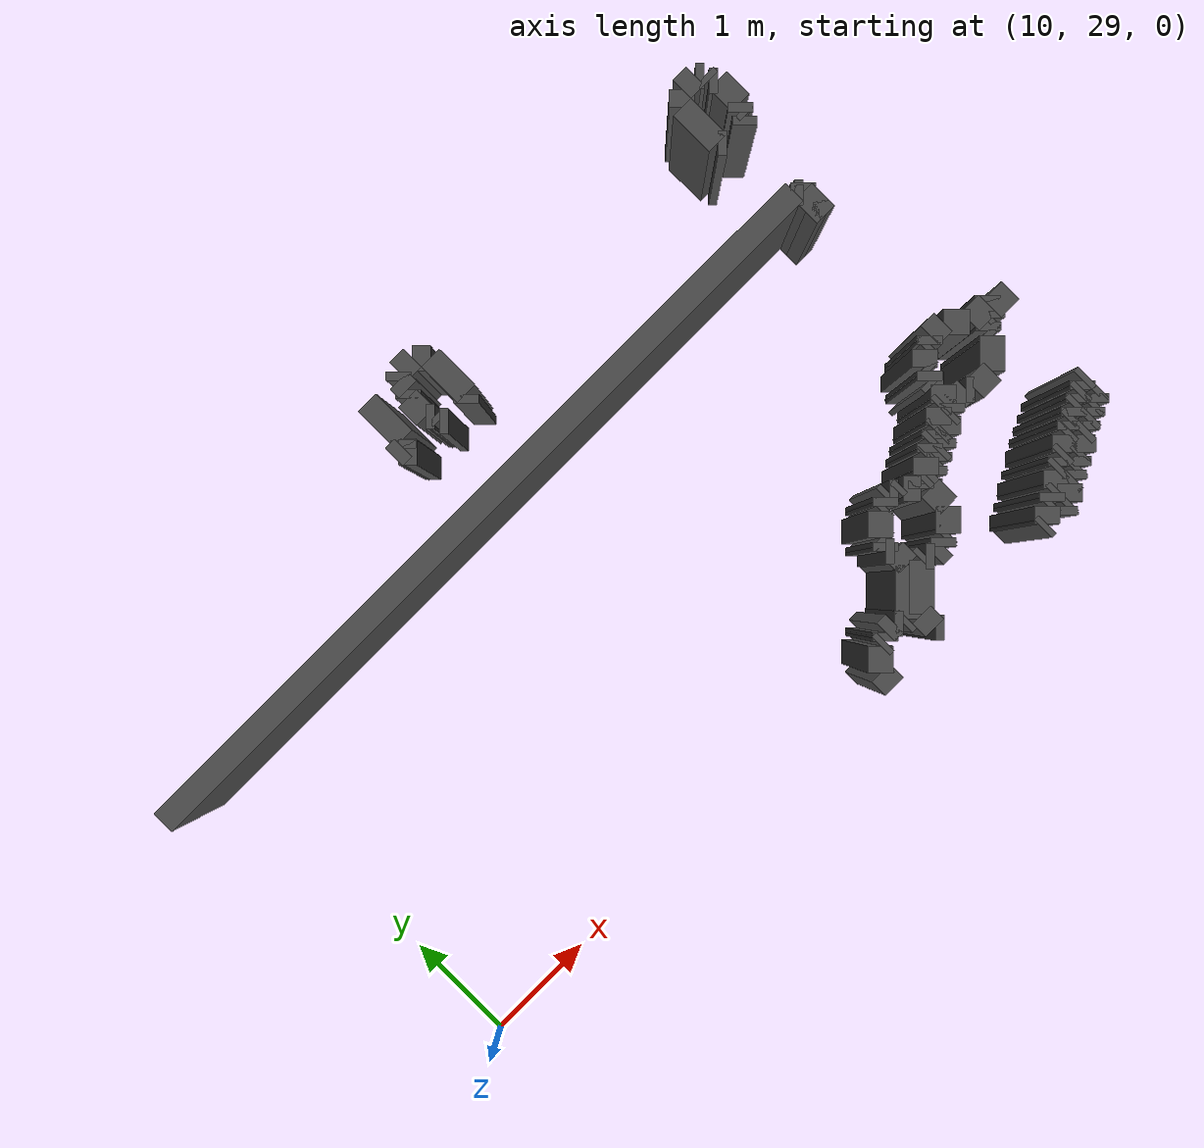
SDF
<sdf version="1.9">
 <model name="generated_walls">
  <static>true</static>
  <link name="wall_17_0">
   <pose>16.525 32.875 0.75 0 0 2.356</pose>
   <collision name="collision"><geometry><box><size>0.071 0.2 1.5</size></box></geometry></collision>
   <visual name="visual">
    <geometry><box><size>0.071 0.2 1.5</size></box></geometry>
    <material><ambient>0.3 0.3 0.3 1</ambient></material>
   </visual>
  </link>
  <link name="wall_17_1">
   <pose>16.500 33.100 0.75 0 0 1.571</pose>
   <collision name="collision"><geometry><box><size>0.400 0.2 1.5</size></box></geometry></collision>
   <visual name="visual">
    <geometry><box><size>0.400 0.2 1.5</size></box></geometry>
    <material><ambient>0.3 0.3 0.3 1</ambient></material>
   </visual>
  </link>
  <link name="wall_17_2">
   <pose>16.550 33.350 0.75 0 0 0.785</pose>
   <collision name="collision"><geometry><box><size>0.141 0.2 1.5</size></box></geometry></collision>
   <visual name="visual">
    <geometry><box><size>0.141 0.2 1.5</size></box></geometry>
    <material><ambient>0.3 0.3 0.3 1</ambient></material>
   </visual>
  </link>
  <link name="wall_17_3">
   <pose>16.675 33.400 0.75 0 0 0.000</pose>
   <collision name="collision"><geometry><box><size>0.150 0.2 1.5</size></box></geometry></collision>
   <visual name="visual">
    <geometry><box><size>0.150 0.2 1.5</size></box></geometry>
    <material><ambient>0.3 0.3 0.3 1</ambient></material>
   </visual>
  </link>
  <link name="wall_17_4">
   <pose>16.775 33.375 0.75 0 0 -0.785</pose>
   <collision name="collision"><geometry><box><size>0.071 0.2 1.5</size></box></geometry></collision>
   <visual name="visual">
    <geometry><box><size>0.071 0.2 1.5</size></box></geometry>
    <material><ambient>0.3 0.3 0.3 1</ambient></material>
   </visual>
  </link>
  <link name="wall_17_5">
   <pose>16.800 33.325 0.75 0 0 -1.571</pose>
   <collision name="collision"><geometry><box><size>0.050 0.2 1.5</size></box></geometry></collision>
   <visual name="visual">
    <geometry><box><size>0.050 0.2 1.5</size></box></geometry>
    <material><ambient>0.3 0.3 0.3 1</ambient></material>
   </visual>
  </link>
  <link name="wall_17_6">
   <pose>16.825 33.275 0.75 0 0 -0.785</pose>
   <collision name="collision"><geometry><box><size>0.071 0.2 1.5</size></box></geometry></collision>
   <visual name="visual">
    <geometry><box><size>0.071 0.2 1.5</size></box></geometry>
    <material><ambient>0.3 0.3 0.3 1</ambient></material>
   </visual>
  </link>
  <link name="wall_17_7">
   <pose>16.850 33.125 0.75 0 0 -1.571</pose>
   <collision name="collision"><geometry><box><size>0.250 0.2 1.5</size></box></geometry></collision>
   <visual name="visual">
    <geometry><box><size>0.250 0.2 1.5</size></box></geometry>
    <material><ambient>0.3 0.3 0.3 1</ambient></material>
   </visual>
  </link>
  <link name="wall_17_8">
   <pose>16.825 32.975 0.75 0 0 -2.356</pose>
   <collision name="collision"><geometry><box><size>0.071 0.2 1.5</size></box></geometry></collision>
   <visual name="visual">
    <geometry><box><size>0.071 0.2 1.5</size></box></geometry>
    <material><ambient>0.3 0.3 0.3 1</ambient></material>
   </visual>
  </link>
  <link name="wall_17_9">
   <pose>16.800 32.925 0.75 0 0 -1.571</pose>
   <collision name="collision"><geometry><box><size>0.050 0.2 1.5</size></box></geometry></collision>
   <visual name="visual">
    <geometry><box><size>0.050 0.2 1.5</size></box></geometry>
    <material><ambient>0.3 0.3 0.3 1</ambient></material>
   </visual>
  </link>
  <link name="wall_17_10">
   <pose>16.775 32.875 0.75 0 0 -2.356</pose>
   <collision name="collision"><geometry><box><size>0.071 0.2 1.5</size></box></geometry></collision>
   <visual name="visual">
    <geometry><box><size>0.071 0.2 1.5</size></box></geometry>
    <material><ambient>0.3 0.3 0.3 1</ambient></material>
   </visual>
  </link>
  <link name="wall_18_0">
   <pose>13.425 32.875 0.75 0 0 2.356</pose>
   <collision name="collision"><geometry><box><size>0.071 0.2 1.5</size></box></geometry></collision>
   <visual name="visual">
    <geometry><box><size>0.071 0.2 1.5</size></box></geometry>
    <material><ambient>0.3 0.3 0.3 1</ambient></material>
   </visual>
  </link>
  <link name="wall_18_1">
   <pose>13.400 32.925 0.75 0 0 1.571</pose>
   <collision name="collision"><geometry><box><size>0.050 0.2 1.5</size></box></geometry></collision>
   <visual name="visual">
    <geometry><box><size>0.050 0.2 1.5</size></box></geometry>
    <material><ambient>0.3 0.3 0.3 1</ambient></material>
   </visual>
  </link>
  <link name="wall_18_2">
   <pose>13.375 32.975 0.75 0 0 2.356</pose>
   <collision name="collision"><geometry><box><size>0.071 0.2 1.5</size></box></geometry></collision>
   <visual name="visual">
    <geometry><box><size>0.071 0.2 1.5</size></box></geometry>
    <material><ambient>0.3 0.3 0.3 1</ambient></material>
   </visual>
  </link>
  <link name="wall_18_3">
   <pose>13.350 33.100 0.75 0 0 1.571</pose>
   <collision name="collision"><geometry><box><size>0.200 0.2 1.5</size></box></geometry></collision>
   <visual name="visual">
    <geometry><box><size>0.200 0.2 1.5</size></box></geometry>
    <material><ambient>0.3 0.3 0.3 1</ambient></material>
   </visual>
  </link>
  <link name="wall_18_4">
   <pose>13.375 33.225 0.75 0 0 0.785</pose>
   <collision name="collision"><geometry><box><size>0.071 0.2 1.5</size></box></geometry></collision>
   <visual name="visual">
    <geometry><box><size>0.071 0.2 1.5</size></box></geometry>
    <material><ambient>0.3 0.3 0.3 1</ambient></material>
   </visual>
  </link>
  <link name="wall_18_5">
   <pose>13.400 33.300 0.75 0 0 1.571</pose>
   <collision name="collision"><geometry><box><size>0.100 0.2 1.5</size></box></geometry></collision>
   <visual name="visual">
    <geometry><box><size>0.100 0.2 1.5</size></box></geometry>
    <material><ambient>0.3 0.3 0.3 1</ambient></material>
   </visual>
  </link>
  <link name="wall_18_6">
   <pose>13.425 33.375 0.75 0 0 0.785</pose>
   <collision name="collision"><geometry><box><size>0.071 0.2 1.5</size></box></geometry></collision>
   <visual name="visual">
    <geometry><box><size>0.071 0.2 1.5</size></box></geometry>
    <material><ambient>0.3 0.3 0.3 1</ambient></material>
   </visual>
  </link>
  <link name="wall_18_7">
   <pose>13.525 33.400 0.75 0 0 0.000</pose>
   <collision name="collision"><geometry><box><size>0.150 0.2 1.5</size></box></geometry></collision>
   <visual name="visual">
    <geometry><box><size>0.150 0.2 1.5</size></box></geometry>
    <material><ambient>0.3 0.3 0.3 1</ambient></material>
   </visual>
  </link>
  <link name="wall_18_8">
   <pose>13.650 33.350 0.75 0 0 -0.785</pose>
   <collision name="collision"><geometry><box><size>0.141 0.2 1.5</size></box></geometry></collision>
   <visual name="visual">
    <geometry><box><size>0.141 0.2 1.5</size></box></geometry>
    <material><ambient>0.3 0.3 0.3 1</ambient></material>
   </visual>
  </link>
  <link name="wall_18_9">
   <pose>13.700 33.100 0.75 0 0 -1.571</pose>
   <collision name="collision"><geometry><box><size>0.400 0.2 1.5</size></box></geometry></collision>
   <visual name="visual">
    <geometry><box><size>0.400 0.2 1.5</size></box></geometry>
    <material><ambient>0.3 0.3 0.3 1</ambient></material>
   </visual>
  </link>
  <link name="wall_18_10">
   <pose>13.675 32.875 0.75 0 0 -2.356</pose>
   <collision name="collision"><geometry><box><size>0.071 0.2 1.5</size></box></geometry></collision>
   <visual name="visual">
    <geometry><box><size>0.071 0.2 1.5</size></box></geometry>
    <material><ambient>0.3 0.3 0.3 1</ambient></material>
   </visual>
  </link>
  <link name="wall_19_0">
   <pose>13.050 32.900 0.75 0 0 2.356</pose>
   <collision name="collision"><geometry><box><size>0.141 0.2 1.5</size></box></geometry></collision>
   <visual name="visual">
    <geometry><box><size>0.141 0.2 1.5</size></box></geometry>
    <material><ambient>0.3 0.3 0.3 1</ambient></material>
   </visual>
  </link>
  <link name="wall_19_1">
   <pose>12.975 32.950 0.75 0 0 3.142</pose>
   <collision name="collision"><geometry><box><size>0.050 0.2 1.5</size></box></geometry></collision>
   <visual name="visual">
    <geometry><box><size>0.050 0.2 1.5</size></box></geometry>
    <material><ambient>0.3 0.3 0.3 1</ambient></material>
   </visual>
  </link>
  <link name="wall_19_2">
   <pose>13.000 32.950 0.75 0 0 0.000</pose>
   <collision name="collision"><geometry><box><size>0.100 0.2 1.5</size></box></geometry></collision>
   <visual name="visual">
    <geometry><box><size>0.100 0.2 1.5</size></box></geometry>
    <material><ambient>0.3 0.3 0.3 1</ambient></material>
   </visual>
  </link>
  <link name="wall_19_3">
   <pose>13.075 32.975 0.75 0 0 0.785</pose>
   <collision name="collision"><geometry><box><size>0.071 0.2 1.5</size></box></geometry></collision>
   <visual name="visual">
    <geometry><box><size>0.071 0.2 1.5</size></box></geometry>
    <material><ambient>0.3 0.3 0.3 1</ambient></material>
   </visual>
  </link>
  <link name="wall_19_4">
   <pose>13.100 33.200 0.75 0 0 1.571</pose>
   <collision name="collision"><geometry><box><size>0.400 0.2 1.5</size></box></geometry></collision>
   <visual name="visual">
    <geometry><box><size>0.400 0.2 1.5</size></box></geometry>
    <material><ambient>0.3 0.3 0.3 1</ambient></material>
   </visual>
  </link>
  <link name="wall_160_3">
   <pose>16.725 32.175 0.75 0 0 -2.356</pose>
   <collision name="collision"><geometry><box><size>0.071 0.2 1.5</size></box></geometry></collision>
   <visual name="visual">
    <geometry><box><size>0.071 0.2 1.5</size></box></geometry>
    <material><ambient>0.3 0.3 0.3 1</ambient></material>
   </visual>
  </link>
  <link name="wall_160_4">
   <pose>16.700 32.025 0.75 0 0 -1.571</pose>
   <collision name="collision"><geometry><box><size>0.250 0.2 1.5</size></box></geometry></collision>
   <visual name="visual">
    <geometry><box><size>0.250 0.2 1.5</size></box></geometry>
    <material><ambient>0.3 0.3 0.3 1</ambient></material>
   </visual>
  </link>
  <link name="wall_160_5">
   <pose>16.700 32.025 0.75 0 0 1.571</pose>
   <collision name="collision"><geometry><box><size>0.250 0.2 1.5</size></box></geometry></collision>
   <visual name="visual">
    <geometry><box><size>0.250 0.2 1.5</size></box></geometry>
    <material><ambient>0.3 0.3 0.3 1</ambient></material>
   </visual>
  </link>
  <link name="wall_160_6">
   <pose>16.675 32.175 0.75 0 0 2.356</pose>
   <collision name="collision"><geometry><box><size>0.071 0.2 1.5</size></box></geometry></collision>
   <visual name="visual">
    <geometry><box><size>0.071 0.2 1.5</size></box></geometry>
    <material><ambient>0.3 0.3 0.3 1</ambient></material>
   </visual>
  </link>
  <link name="wall_160_7">
   <pose>13.150 32.200 0.75 0 0 3.142</pose>
   <collision name="collision"><geometry><box><size>7.000 0.2 1.5</size></box></geometry></collision>
   <visual name="visual">
    <geometry><box><size>7.000 0.2 1.5</size></box></geometry>
    <material><ambient>0.3 0.3 0.3 1</ambient></material>
   </visual>
  </link>
  <link name="wall_161_358">
   <pose>14.450 28.975 0.75 0 0 1.571</pose>
   <collision name="collision"><geometry><box><size>0.150 0.2 1.5</size></box></geometry></collision>
   <visual name="visual">
    <geometry><box><size>0.150 0.2 1.5</size></box></geometry>
    <material><ambient>0.3 0.3 0.3 1</ambient></material>
   </visual>
  </link>
  <link name="wall_161_359">
   <pose>14.525 29.125 0.75 0 0 0.785</pose>
   <collision name="collision"><geometry><box><size>0.212 0.2 1.5</size></box></geometry></collision>
   <visual name="visual">
    <geometry><box><size>0.212 0.2 1.5</size></box></geometry>
    <material><ambient>0.3 0.3 0.3 1</ambient></material>
   </visual>
  </link>
  <link name="wall_161_360">
   <pose>14.625 29.200 0.75 0 0 0.000</pose>
   <collision name="collision"><geometry><box><size>0.050 0.2 1.5</size></box></geometry></collision>
   <visual name="visual">
    <geometry><box><size>0.050 0.2 1.5</size></box></geometry>
    <material><ambient>0.3 0.3 0.3 1</ambient></material>
   </visual>
  </link>
  <link name="wall_161_361">
   <pose>14.675 29.225 0.75 0 0 0.785</pose>
   <collision name="collision"><geometry><box><size>0.071 0.2 1.5</size></box></geometry></collision>
   <visual name="visual">
    <geometry><box><size>0.071 0.2 1.5</size></box></geometry>
    <material><ambient>0.3 0.3 0.3 1</ambient></material>
   </visual>
  </link>
  <link name="wall_161_362">
   <pose>14.750 29.250 0.75 0 0 0.000</pose>
   <collision name="collision"><geometry><box><size>0.100 0.2 1.5</size></box></geometry></collision>
   <visual name="visual">
    <geometry><box><size>0.100 0.2 1.5</size></box></geometry>
    <material><ambient>0.3 0.3 0.3 1</ambient></material>
   </visual>
  </link>
  <link name="wall_161_363">
   <pose>14.825 29.225 0.75 0 0 -0.785</pose>
   <collision name="collision"><geometry><box><size>0.071 0.2 1.5</size></box></geometry></collision>
   <visual name="visual">
    <geometry><box><size>0.071 0.2 1.5</size></box></geometry>
    <material><ambient>0.3 0.3 0.3 1</ambient></material>
   </visual>
  </link>
  <link name="wall_161_364">
   <pose>14.875 29.200 0.75 0 0 0.000</pose>
   <collision name="collision"><geometry><box><size>0.050 0.2 1.5</size></box></geometry></collision>
   <visual name="visual">
    <geometry><box><size>0.050 0.2 1.5</size></box></geometry>
    <material><ambient>0.3 0.3 0.3 1</ambient></material>
   </visual>
  </link>
  <link name="wall_161_365">
   <pose>15.050 29.350 0.75 0 0 0.785</pose>
   <collision name="collision"><geometry><box><size>0.424 0.2 1.5</size></box></geometry></collision>
   <visual name="visual">
    <geometry><box><size>0.424 0.2 1.5</size></box></geometry>
    <material><ambient>0.3 0.3 0.3 1</ambient></material>
   </visual>
  </link>
  <link name="wall_161_366">
   <pose>15.200 29.575 0.75 0 0 1.571</pose>
   <collision name="collision"><geometry><box><size>0.150 0.2 1.5</size></box></geometry></collision>
   <visual name="visual">
    <geometry><box><size>0.150 0.2 1.5</size></box></geometry>
    <material><ambient>0.3 0.3 0.3 1</ambient></material>
   </visual>
  </link>
  <link name="wall_161_367">
   <pose>15.175 29.675 0.75 0 0 2.356</pose>
   <collision name="collision"><geometry><box><size>0.071 0.2 1.5</size></box></geometry></collision>
   <visual name="visual">
    <geometry><box><size>0.071 0.2 1.5</size></box></geometry>
    <material><ambient>0.3 0.3 0.3 1</ambient></material>
   </visual>
  </link>
  <link name="wall_161_368">
   <pose>15.175 29.725 0.75 0 0 0.785</pose>
   <collision name="collision"><geometry><box><size>0.071 0.2 1.5</size></box></geometry></collision>
   <visual name="visual">
    <geometry><box><size>0.071 0.2 1.5</size></box></geometry>
    <material><ambient>0.3 0.3 0.3 1</ambient></material>
   </visual>
  </link>
  <link name="wall_161_369">
   <pose>15.200 29.775 0.75 0 0 1.571</pose>
   <collision name="collision"><geometry><box><size>0.050 0.2 1.5</size></box></geometry></collision>
   <visual name="visual">
    <geometry><box><size>0.050 0.2 1.5</size></box></geometry>
    <material><ambient>0.3 0.3 0.3 1</ambient></material>
   </visual>
  </link>
  <link name="wall_161_370">
   <pose>15.275 29.875 0.75 0 0 0.785</pose>
   <collision name="collision"><geometry><box><size>0.212 0.2 1.5</size></box></geometry></collision>
   <visual name="visual">
    <geometry><box><size>0.212 0.2 1.5</size></box></geometry>
    <material><ambient>0.3 0.3 0.3 1</ambient></material>
   </visual>
  </link>
  <link name="wall_161_371">
   <pose>15.375 29.950 0.75 0 0 0.000</pose>
   <collision name="collision"><geometry><box><size>0.050 0.2 1.5</size></box></geometry></collision>
   <visual name="visual">
    <geometry><box><size>0.050 0.2 1.5</size></box></geometry>
    <material><ambient>0.3 0.3 0.3 1</ambient></material>
   </visual>
  </link>
  <link name="wall_161_372">
   <pose>15.425 29.975 0.75 0 0 0.785</pose>
   <collision name="collision"><geometry><box><size>0.071 0.2 1.5</size></box></geometry></collision>
   <visual name="visual">
    <geometry><box><size>0.071 0.2 1.5</size></box></geometry>
    <material><ambient>0.3 0.3 0.3 1</ambient></material>
   </visual>
  </link>
  <link name="wall_161_373">
   <pose>15.475 30.000 0.75 0 0 0.000</pose>
   <collision name="collision"><geometry><box><size>0.050 0.2 1.5</size></box></geometry></collision>
   <visual name="visual">
    <geometry><box><size>0.050 0.2 1.5</size></box></geometry>
    <material><ambient>0.3 0.3 0.3 1</ambient></material>
   </visual>
  </link>
  <link name="wall_161_374">
   <pose>15.525 29.975 0.75 0 0 -0.785</pose>
   <collision name="collision"><geometry><box><size>0.071 0.2 1.5</size></box></geometry></collision>
   <visual name="visual">
    <geometry><box><size>0.071 0.2 1.5</size></box></geometry>
    <material><ambient>0.3 0.3 0.3 1</ambient></material>
   </visual>
  </link>
  <link name="wall_161_375">
   <pose>15.575 29.950 0.75 0 0 0.000</pose>
   <collision name="collision"><geometry><box><size>0.050 0.2 1.5</size></box></geometry></collision>
   <visual name="visual">
    <geometry><box><size>0.050 0.2 1.5</size></box></geometry>
    <material><ambient>0.3 0.3 0.3 1</ambient></material>
   </visual>
  </link>
  <link name="wall_161_376">
   <pose>15.650 29.900 0.75 0 0 -0.785</pose>
   <collision name="collision"><geometry><box><size>0.141 0.2 1.5</size></box></geometry></collision>
   <visual name="visual">
    <geometry><box><size>0.141 0.2 1.5</size></box></geometry>
    <material><ambient>0.3 0.3 0.3 1</ambient></material>
   </visual>
  </link>
  <link name="wall_161_377">
   <pose>15.725 29.875 0.75 0 0 0.785</pose>
   <collision name="collision"><geometry><box><size>0.071 0.2 1.5</size></box></geometry></collision>
   <visual name="visual">
    <geometry><box><size>0.071 0.2 1.5</size></box></geometry>
    <material><ambient>0.3 0.3 0.3 1</ambient></material>
   </visual>
  </link>
  <link name="wall_161_378">
   <pose>15.775 29.900 0.75 0 0 0.000</pose>
   <collision name="collision"><geometry><box><size>0.050 0.2 1.5</size></box></geometry></collision>
   <visual name="visual">
    <geometry><box><size>0.050 0.2 1.5</size></box></geometry>
    <material><ambient>0.3 0.3 0.3 1</ambient></material>
   </visual>
  </link>
  <link name="wall_161_379">
   <pose>15.850 29.950 0.75 0 0 0.785</pose>
   <collision name="collision"><geometry><box><size>0.141 0.2 1.5</size></box></geometry></collision>
   <visual name="visual">
    <geometry><box><size>0.141 0.2 1.5</size></box></geometry>
    <material><ambient>0.3 0.3 0.3 1</ambient></material>
   </visual>
  </link>
  <link name="wall_161_380">
   <pose>15.925 30.000 0.75 0 0 0.000</pose>
   <collision name="collision"><geometry><box><size>0.050 0.2 1.5</size></box></geometry></collision>
   <visual name="visual">
    <geometry><box><size>0.050 0.2 1.5</size></box></geometry>
    <material><ambient>0.3 0.3 0.3 1</ambient></material>
   </visual>
  </link>
  <link name="wall_161_381">
   <pose>15.975 30.025 0.75 0 0 0.785</pose>
   <collision name="collision"><geometry><box><size>0.071 0.2 1.5</size></box></geometry></collision>
   <visual name="visual">
    <geometry><box><size>0.071 0.2 1.5</size></box></geometry>
    <material><ambient>0.3 0.3 0.3 1</ambient></material>
   </visual>
  </link>
  <link name="wall_161_382">
   <pose>16.025 30.050 0.75 0 0 0.000</pose>
   <collision name="collision"><geometry><box><size>0.050 0.2 1.5</size></box></geometry></collision>
   <visual name="visual">
    <geometry><box><size>0.050 0.2 1.5</size></box></geometry>
    <material><ambient>0.3 0.3 0.3 1</ambient></material>
   </visual>
  </link>
  <link name="wall_161_383">
   <pose>16.075 30.075 0.75 0 0 0.785</pose>
   <collision name="collision"><geometry><box><size>0.071 0.2 1.5</size></box></geometry></collision>
   <visual name="visual">
    <geometry><box><size>0.071 0.2 1.5</size></box></geometry>
    <material><ambient>0.3 0.3 0.3 1</ambient></material>
   </visual>
  </link>
  <link name="wall_161_384">
   <pose>16.125 30.100 0.75 0 0 0.000</pose>
   <collision name="collision"><geometry><box><size>0.050 0.2 1.5</size></box></geometry></collision>
   <visual name="visual">
    <geometry><box><size>0.050 0.2 1.5</size></box></geometry>
    <material><ambient>0.3 0.3 0.3 1</ambient></material>
   </visual>
  </link>
  <link name="wall_161_385">
   <pose>16.200 30.150 0.75 0 0 0.785</pose>
   <collision name="collision"><geometry><box><size>0.141 0.2 1.5</size></box></geometry></collision>
   <visual name="visual">
    <geometry><box><size>0.141 0.2 1.5</size></box></geometry>
    <material><ambient>0.3 0.3 0.3 1</ambient></material>
   </visual>
  </link>
  <link name="wall_161_386">
   <pose>16.275 30.200 0.75 0 0 0.000</pose>
   <collision name="collision"><geometry><box><size>0.050 0.2 1.5</size></box></geometry></collision>
   <visual name="visual">
    <geometry><box><size>0.050 0.2 1.5</size></box></geometry>
    <material><ambient>0.3 0.3 0.3 1</ambient></material>
   </visual>
  </link>
  <link name="wall_161_387">
   <pose>16.350 30.250 0.75 0 0 0.785</pose>
   <collision name="collision"><geometry><box><size>0.141 0.2 1.5</size></box></geometry></collision>
   <visual name="visual">
    <geometry><box><size>0.141 0.2 1.5</size></box></geometry>
    <material><ambient>0.3 0.3 0.3 1</ambient></material>
   </visual>
  </link>
  <link name="wall_161_388">
   <pose>16.375 30.325 0.75 0 0 2.356</pose>
   <collision name="collision"><geometry><box><size>0.071 0.2 1.5</size></box></geometry></collision>
   <visual name="visual">
    <geometry><box><size>0.071 0.2 1.5</size></box></geometry>
    <material><ambient>0.3 0.3 0.3 1</ambient></material>
   </visual>
  </link>
  <link name="wall_161_389">
   <pose>16.350 30.375 0.75 0 0 1.571</pose>
   <collision name="collision"><geometry><box><size>0.050 0.2 1.5</size></box></geometry></collision>
   <visual name="visual">
    <geometry><box><size>0.050 0.2 1.5</size></box></geometry>
    <material><ambient>0.3 0.3 0.3 1</ambient></material>
   </visual>
  </link>
  <link name="wall_161_390">
   <pose>16.375 30.425 0.75 0 0 0.785</pose>
   <collision name="collision"><geometry><box><size>0.071 0.2 1.5</size></box></geometry></collision>
   <visual name="visual">
    <geometry><box><size>0.071 0.2 1.5</size></box></geometry>
    <material><ambient>0.3 0.3 0.3 1</ambient></material>
   </visual>
  </link>
  <link name="wall_161_391">
   <pose>16.400 30.475 0.75 0 0 1.571</pose>
   <collision name="collision"><geometry><box><size>0.050 0.2 1.5</size></box></geometry></collision>
   <visual name="visual">
    <geometry><box><size>0.050 0.2 1.5</size></box></geometry>
    <material><ambient>0.3 0.3 0.3 1</ambient></material>
   </visual>
  </link>
  <link name="wall_161_392">
   <pose>16.450 30.550 0.75 0 0 0.785</pose>
   <collision name="collision"><geometry><box><size>0.141 0.2 1.5</size></box></geometry></collision>
   <visual name="visual">
    <geometry><box><size>0.141 0.2 1.5</size></box></geometry>
    <material><ambient>0.3 0.3 0.3 1</ambient></material>
   </visual>
  </link>
  <link name="wall_161_393">
   <pose>16.525 30.600 0.75 0 0 0.000</pose>
   <collision name="collision"><geometry><box><size>0.050 0.2 1.5</size></box></geometry></collision>
   <visual name="visual">
    <geometry><box><size>0.050 0.2 1.5</size></box></geometry>
    <material><ambient>0.3 0.3 0.3 1</ambient></material>
   </visual>
  </link>
  <link name="wall_161_394">
   <pose>16.575 30.625 0.75 0 0 0.785</pose>
   <collision name="collision"><geometry><box><size>0.071 0.2 1.5</size></box></geometry></collision>
   <visual name="visual">
    <geometry><box><size>0.071 0.2 1.5</size></box></geometry>
    <material><ambient>0.3 0.3 0.3 1</ambient></material>
   </visual>
  </link>
  <link name="wall_161_395">
   <pose>16.675 30.650 0.75 0 0 0.000</pose>
   <collision name="collision"><geometry><box><size>0.150 0.2 1.5</size></box></geometry></collision>
   <visual name="visual">
    <geometry><box><size>0.150 0.2 1.5</size></box></geometry>
    <material><ambient>0.3 0.3 0.3 1</ambient></material>
   </visual>
  </link>
  <link name="wall_161_396">
   <pose>16.825 30.575 0.75 0 0 -0.785</pose>
   <collision name="collision"><geometry><box><size>0.212 0.2 1.5</size></box></geometry></collision>
   <visual name="visual">
    <geometry><box><size>0.212 0.2 1.5</size></box></geometry>
    <material><ambient>0.3 0.3 0.3 1</ambient></material>
   </visual>
  </link>
  <link name="wall_161_397">
   <pose>17.000 30.500 0.75 0 0 0.000</pose>
   <collision name="collision"><geometry><box><size>0.200 0.2 1.5</size></box></geometry></collision>
   <visual name="visual">
    <geometry><box><size>0.200 0.2 1.5</size></box></geometry>
    <material><ambient>0.3 0.3 0.3 1</ambient></material>
   </visual>
  </link>
  <link name="wall_161_398">
   <pose>17.125 30.525 0.75 0 0 0.785</pose>
   <collision name="collision"><geometry><box><size>0.071 0.2 1.5</size></box></geometry></collision>
   <visual name="visual">
    <geometry><box><size>0.071 0.2 1.5</size></box></geometry>
    <material><ambient>0.3 0.3 0.3 1</ambient></material>
   </visual>
  </link>
  <link name="wall_161_464">
   <pose>17.200 30.450 0.75 0 0 3.142</pose>
   <collision name="collision"><geometry><box><size>0.200 0.2 1.5</size></box></geometry></collision>
   <visual name="visual">
    <geometry><box><size>0.200 0.2 1.5</size></box></geometry>
    <material><ambient>0.3 0.3 0.3 1</ambient></material>
   </visual>
  </link>
  <link name="wall_161_465">
   <pose>17.075 30.425 0.75 0 0 -2.356</pose>
   <collision name="collision"><geometry><box><size>0.071 0.2 1.5</size></box></geometry></collision>
   <visual name="visual">
    <geometry><box><size>0.071 0.2 1.5</size></box></geometry>
    <material><ambient>0.3 0.3 0.3 1</ambient></material>
   </visual>
  </link>
  <link name="wall_161_466">
   <pose>17.025 30.400 0.75 0 0 3.142</pose>
   <collision name="collision"><geometry><box><size>0.050 0.2 1.5</size></box></geometry></collision>
   <visual name="visual">
    <geometry><box><size>0.050 0.2 1.5</size></box></geometry>
    <material><ambient>0.3 0.3 0.3 1</ambient></material>
   </visual>
  </link>
  <link name="wall_161_467">
   <pose>16.975 30.375 0.75 0 0 -2.356</pose>
   <collision name="collision"><geometry><box><size>0.071 0.2 1.5</size></box></geometry></collision>
   <visual name="visual">
    <geometry><box><size>0.071 0.2 1.5</size></box></geometry>
    <material><ambient>0.3 0.3 0.3 1</ambient></material>
   </visual>
  </link>
  <link name="wall_161_468">
   <pose>16.950 30.325 0.75 0 0 -1.571</pose>
   <collision name="collision"><geometry><box><size>0.050 0.2 1.5</size></box></geometry></collision>
   <visual name="visual">
    <geometry><box><size>0.050 0.2 1.5</size></box></geometry>
    <material><ambient>0.3 0.3 0.3 1</ambient></material>
   </visual>
  </link>
  <link name="wall_161_469">
   <pose>16.850 30.200 0.75 0 0 -2.356</pose>
   <collision name="collision"><geometry><box><size>0.283 0.2 1.5</size></box></geometry></collision>
   <visual name="visual">
    <geometry><box><size>0.283 0.2 1.5</size></box></geometry>
    <material><ambient>0.3 0.3 0.3 1</ambient></material>
   </visual>
  </link>
  <link name="wall_161_470">
   <pose>16.650 30.100 0.75 0 0 3.142</pose>
   <collision name="collision"><geometry><box><size>0.200 0.2 1.5</size></box></geometry></collision>
   <visual name="visual">
    <geometry><box><size>0.200 0.2 1.5</size></box></geometry>
    <material><ambient>0.3 0.3 0.3 1</ambient></material>
   </visual>
  </link>
  <link name="wall_161_471">
   <pose>16.525 30.125 0.75 0 0 2.356</pose>
   <collision name="collision"><geometry><box><size>0.071 0.2 1.5</size></box></geometry></collision>
   <visual name="visual">
    <geometry><box><size>0.071 0.2 1.5</size></box></geometry>
    <material><ambient>0.3 0.3 0.3 1</ambient></material>
   </visual>
  </link>
  <link name="wall_161_472">
   <pose>16.425 30.150 0.75 0 0 3.142</pose>
   <collision name="collision"><geometry><box><size>0.150 0.2 1.5</size></box></geometry></collision>
   <visual name="visual">
    <geometry><box><size>0.150 0.2 1.5</size></box></geometry>
    <material><ambient>0.3 0.3 0.3 1</ambient></material>
   </visual>
  </link>
  <link name="wall_161_473">
   <pose>16.325 30.125 0.75 0 0 -2.356</pose>
   <collision name="collision"><geometry><box><size>0.071 0.2 1.5</size></box></geometry></collision>
   <visual name="visual">
    <geometry><box><size>0.071 0.2 1.5</size></box></geometry>
    <material><ambient>0.3 0.3 0.3 1</ambient></material>
   </visual>
  </link>
  <link name="wall_161_474">
   <pose>16.275 30.100 0.75 0 0 3.142</pose>
   <collision name="collision"><geometry><box><size>0.050 0.2 1.5</size></box></geometry></collision>
   <visual name="visual">
    <geometry><box><size>0.050 0.2 1.5</size></box></geometry>
    <material><ambient>0.3 0.3 0.3 1</ambient></material>
   </visual>
  </link>
  <link name="wall_161_475">
   <pose>16.200 30.050 0.75 0 0 -2.356</pose>
   <collision name="collision"><geometry><box><size>0.141 0.2 1.5</size></box></geometry></collision>
   <visual name="visual">
    <geometry><box><size>0.141 0.2 1.5</size></box></geometry>
    <material><ambient>0.3 0.3 0.3 1</ambient></material>
   </visual>
  </link>
  <link name="wall_161_476">
   <pose>16.125 30.000 0.75 0 0 3.142</pose>
   <collision name="collision"><geometry><box><size>0.050 0.2 1.5</size></box></geometry></collision>
   <visual name="visual">
    <geometry><box><size>0.050 0.2 1.5</size></box></geometry>
    <material><ambient>0.3 0.3 0.3 1</ambient></material>
   </visual>
  </link>
  <link name="wall_161_477">
   <pose>16.075 29.975 0.75 0 0 -2.356</pose>
   <collision name="collision"><geometry><box><size>0.071 0.2 1.5</size></box></geometry></collision>
   <visual name="visual">
    <geometry><box><size>0.071 0.2 1.5</size></box></geometry>
    <material><ambient>0.3 0.3 0.3 1</ambient></material>
   </visual>
  </link>
  <link name="wall_161_478">
   <pose>16.025 29.950 0.75 0 0 3.142</pose>
   <collision name="collision"><geometry><box><size>0.050 0.2 1.5</size></box></geometry></collision>
   <visual name="visual">
    <geometry><box><size>0.050 0.2 1.5</size></box></geometry>
    <material><ambient>0.3 0.3 0.3 1</ambient></material>
   </visual>
  </link>
  <link name="wall_161_479">
   <pose>15.975 29.925 0.75 0 0 -2.356</pose>
   <collision name="collision"><geometry><box><size>0.071 0.2 1.5</size></box></geometry></collision>
   <visual name="visual">
    <geometry><box><size>0.071 0.2 1.5</size></box></geometry>
    <material><ambient>0.3 0.3 0.3 1</ambient></material>
   </visual>
  </link>
  <link name="wall_161_480">
   <pose>15.925 29.900 0.75 0 0 3.142</pose>
   <collision name="collision"><geometry><box><size>0.050 0.2 1.5</size></box></geometry></collision>
   <visual name="visual">
    <geometry><box><size>0.050 0.2 1.5</size></box></geometry>
    <material><ambient>0.3 0.3 0.3 1</ambient></material>
   </visual>
  </link>
  <link name="wall_161_481">
   <pose>15.875 29.875 0.75 0 0 -2.356</pose>
   <collision name="collision"><geometry><box><size>0.071 0.2 1.5</size></box></geometry></collision>
   <visual name="visual">
    <geometry><box><size>0.071 0.2 1.5</size></box></geometry>
    <material><ambient>0.3 0.3 0.3 1</ambient></material>
   </visual>
  </link>
  <link name="wall_161_482">
   <pose>15.825 29.850 0.75 0 0 3.142</pose>
   <collision name="collision"><geometry><box><size>0.050 0.2 1.5</size></box></geometry></collision>
   <visual name="visual">
    <geometry><box><size>0.050 0.2 1.5</size></box></geometry>
    <material><ambient>0.3 0.3 0.3 1</ambient></material>
   </visual>
  </link>
  <link name="wall_161_483">
   <pose>15.775 29.825 0.75 0 0 -2.356</pose>
   <collision name="collision"><geometry><box><size>0.071 0.2 1.5</size></box></geometry></collision>
   <visual name="visual">
    <geometry><box><size>0.071 0.2 1.5</size></box></geometry>
    <material><ambient>0.3 0.3 0.3 1</ambient></material>
   </visual>
  </link>
  <link name="wall_161_484">
   <pose>15.750 29.700 0.75 0 0 -1.571</pose>
   <collision name="collision"><geometry><box><size>0.200 0.2 1.5</size></box></geometry></collision>
   <visual name="visual">
    <geometry><box><size>0.200 0.2 1.5</size></box></geometry>
    <material><ambient>0.3 0.3 0.3 1</ambient></material>
   </visual>
  </link>
  <link name="wall_161_485">
   <pose>15.675 29.525 0.75 0 0 -2.356</pose>
   <collision name="collision"><geometry><box><size>0.212 0.2 1.5</size></box></geometry></collision>
   <visual name="visual">
    <geometry><box><size>0.212 0.2 1.5</size></box></geometry>
    <material><ambient>0.3 0.3 0.3 1</ambient></material>
   </visual>
  </link>
  <link name="wall_161_486">
   <pose>15.575 29.450 0.75 0 0 3.142</pose>
   <collision name="collision"><geometry><box><size>0.050 0.2 1.5</size></box></geometry></collision>
   <visual name="visual">
    <geometry><box><size>0.050 0.2 1.5</size></box></geometry>
    <material><ambient>0.3 0.3 0.3 1</ambient></material>
   </visual>
  </link>
  <link name="wall_161_487">
   <pose>15.525 29.425 0.75 0 0 -2.356</pose>
   <collision name="collision"><geometry><box><size>0.071 0.2 1.5</size></box></geometry></collision>
   <visual name="visual">
    <geometry><box><size>0.071 0.2 1.5</size></box></geometry>
    <material><ambient>0.3 0.3 0.3 1</ambient></material>
   </visual>
  </link>
  <link name="wall_161_488">
   <pose>15.450 29.400 0.75 0 0 3.142</pose>
   <collision name="collision"><geometry><box><size>0.100 0.2 1.5</size></box></geometry></collision>
   <visual name="visual">
    <geometry><box><size>0.100 0.2 1.5</size></box></geometry>
    <material><ambient>0.3 0.3 0.3 1</ambient></material>
   </visual>
  </link>
  <link name="wall_161_489">
   <pose>15.375 29.425 0.75 0 0 2.356</pose>
   <collision name="collision"><geometry><box><size>0.071 0.2 1.5</size></box></geometry></collision>
   <visual name="visual">
    <geometry><box><size>0.071 0.2 1.5</size></box></geometry>
    <material><ambient>0.3 0.3 0.3 1</ambient></material>
   </visual>
  </link>
  <link name="wall_161_490">
   <pose>15.325 29.450 0.75 0 0 3.142</pose>
   <collision name="collision"><geometry><box><size>0.050 0.2 1.5</size></box></geometry></collision>
   <visual name="visual">
    <geometry><box><size>0.050 0.2 1.5</size></box></geometry>
    <material><ambient>0.3 0.3 0.3 1</ambient></material>
   </visual>
  </link>
  <link name="wall_161_491">
   <pose>15.150 29.300 0.75 0 0 -2.356</pose>
   <collision name="collision"><geometry><box><size>0.424 0.2 1.5</size></box></geometry></collision>
   <visual name="visual">
    <geometry><box><size>0.424 0.2 1.5</size></box></geometry>
    <material><ambient>0.3 0.3 0.3 1</ambient></material>
   </visual>
  </link>
  <link name="wall_161_492">
   <pose>15.000 29.075 0.75 0 0 -1.571</pose>
   <collision name="collision"><geometry><box><size>0.150 0.2 1.5</size></box></geometry></collision>
   <visual name="visual">
    <geometry><box><size>0.150 0.2 1.5</size></box></geometry>
    <material><ambient>0.3 0.3 0.3 1</ambient></material>
   </visual>
  </link>
  <link name="wall_161_493">
   <pose>15.025 28.975 0.75 0 0 -0.785</pose>
   <collision name="collision"><geometry><box><size>0.071 0.2 1.5</size></box></geometry></collision>
   <visual name="visual">
    <geometry><box><size>0.071 0.2 1.5</size></box></geometry>
    <material><ambient>0.3 0.3 0.3 1</ambient></material>
   </visual>
  </link>
  <link name="wall_161_550">
   <pose>16.175 28.950 0.75 0 0 0.000</pose>
   <collision name="collision"><geometry><box><size>0.050 0.2 1.5</size></box></geometry></collision>
   <visual name="visual">
    <geometry><box><size>0.050 0.2 1.5</size></box></geometry>
    <material><ambient>0.3 0.3 0.3 1</ambient></material>
   </visual>
  </link>
  <link name="wall_161_551">
   <pose>16.250 29.000 0.75 0 0 0.785</pose>
   <collision name="collision"><geometry><box><size>0.141 0.2 1.5</size></box></geometry></collision>
   <visual name="visual">
    <geometry><box><size>0.141 0.2 1.5</size></box></geometry>
    <material><ambient>0.3 0.3 0.3 1</ambient></material>
   </visual>
  </link>
  <link name="wall_161_552">
   <pose>16.325 29.050 0.75 0 0 0.000</pose>
   <collision name="collision"><geometry><box><size>0.050 0.2 1.5</size></box></geometry></collision>
   <visual name="visual">
    <geometry><box><size>0.050 0.2 1.5</size></box></geometry>
    <material><ambient>0.3 0.3 0.3 1</ambient></material>
   </visual>
  </link>
  <link name="wall_161_553">
   <pose>16.375 29.075 0.75 0 0 0.785</pose>
   <collision name="collision"><geometry><box><size>0.071 0.2 1.5</size></box></geometry></collision>
   <visual name="visual">
    <geometry><box><size>0.071 0.2 1.5</size></box></geometry>
    <material><ambient>0.3 0.3 0.3 1</ambient></material>
   </visual>
  </link>
  <link name="wall_161_554">
   <pose>16.425 29.100 0.75 0 0 0.000</pose>
   <collision name="collision"><geometry><box><size>0.050 0.2 1.5</size></box></geometry></collision>
   <visual name="visual">
    <geometry><box><size>0.050 0.2 1.5</size></box></geometry>
    <material><ambient>0.3 0.3 0.3 1</ambient></material>
   </visual>
  </link>
  <link name="wall_161_555">
   <pose>16.500 29.150 0.75 0 0 0.785</pose>
   <collision name="collision"><geometry><box><size>0.141 0.2 1.5</size></box></geometry></collision>
   <visual name="visual">
    <geometry><box><size>0.141 0.2 1.5</size></box></geometry>
    <material><ambient>0.3 0.3 0.3 1</ambient></material>
   </visual>
  </link>
  <link name="wall_161_556">
   <pose>16.575 29.200 0.75 0 0 0.000</pose>
   <collision name="collision"><geometry><box><size>0.050 0.2 1.5</size></box></geometry></collision>
   <visual name="visual">
    <geometry><box><size>0.050 0.2 1.5</size></box></geometry>
    <material><ambient>0.3 0.3 0.3 1</ambient></material>
   </visual>
  </link>
  <link name="wall_161_557">
   <pose>16.625 29.225 0.75 0 0 0.785</pose>
   <collision name="collision"><geometry><box><size>0.071 0.2 1.5</size></box></geometry></collision>
   <visual name="visual">
    <geometry><box><size>0.071 0.2 1.5</size></box></geometry>
    <material><ambient>0.3 0.3 0.3 1</ambient></material>
   </visual>
  </link>
  <link name="wall_161_558">
   <pose>16.675 29.250 0.75 0 0 0.000</pose>
   <collision name="collision"><geometry><box><size>0.050 0.2 1.5</size></box></geometry></collision>
   <visual name="visual">
    <geometry><box><size>0.050 0.2 1.5</size></box></geometry>
    <material><ambient>0.3 0.3 0.3 1</ambient></material>
   </visual>
  </link>
  <link name="wall_161_559">
   <pose>16.750 29.300 0.75 0 0 0.785</pose>
   <collision name="collision"><geometry><box><size>0.141 0.2 1.5</size></box></geometry></collision>
   <visual name="visual">
    <geometry><box><size>0.141 0.2 1.5</size></box></geometry>
    <material><ambient>0.3 0.3 0.3 1</ambient></material>
   </visual>
  </link>
  <link name="wall_161_560">
   <pose>16.825 29.350 0.75 0 0 0.000</pose>
   <collision name="collision"><geometry><box><size>0.050 0.2 1.5</size></box></geometry></collision>
   <visual name="visual">
    <geometry><box><size>0.050 0.2 1.5</size></box></geometry>
    <material><ambient>0.3 0.3 0.3 1</ambient></material>
   </visual>
  </link>
  <link name="wall_161_561">
   <pose>16.875 29.375 0.75 0 0 0.785</pose>
   <collision name="collision"><geometry><box><size>0.071 0.2 1.5</size></box></geometry></collision>
   <visual name="visual">
    <geometry><box><size>0.071 0.2 1.5</size></box></geometry>
    <material><ambient>0.3 0.3 0.3 1</ambient></material>
   </visual>
  </link>
  <link name="wall_161_562">
   <pose>16.925 29.400 0.75 0 0 0.000</pose>
   <collision name="collision"><geometry><box><size>0.050 0.2 1.5</size></box></geometry></collision>
   <visual name="visual">
    <geometry><box><size>0.050 0.2 1.5</size></box></geometry>
    <material><ambient>0.3 0.3 0.3 1</ambient></material>
   </visual>
  </link>
  <link name="wall_161_563">
   <pose>16.975 29.425 0.75 0 0 0.785</pose>
   <collision name="collision"><geometry><box><size>0.071 0.2 1.5</size></box></geometry></collision>
   <visual name="visual">
    <geometry><box><size>0.071 0.2 1.5</size></box></geometry>
    <material><ambient>0.3 0.3 0.3 1</ambient></material>
   </visual>
  </link>
  <link name="wall_161_564">
   <pose>17.025 29.450 0.75 0 0 0.000</pose>
   <collision name="collision"><geometry><box><size>0.050 0.2 1.5</size></box></geometry></collision>
   <visual name="visual">
    <geometry><box><size>0.050 0.2 1.5</size></box></geometry>
    <material><ambient>0.3 0.3 0.3 1</ambient></material>
   </visual>
  </link>
  <link name="wall_161_565">
   <pose>17.075 29.475 0.75 0 0 0.785</pose>
   <collision name="collision"><geometry><box><size>0.071 0.2 1.5</size></box></geometry></collision>
   <visual name="visual">
    <geometry><box><size>0.071 0.2 1.5</size></box></geometry>
    <material><ambient>0.3 0.3 0.3 1</ambient></material>
   </visual>
  </link>
  <link name="wall_161_566">
   <pose>17.125 29.500 0.75 0 0 0.000</pose>
   <collision name="collision"><geometry><box><size>0.050 0.2 1.5</size></box></geometry></collision>
   <visual name="visual">
    <geometry><box><size>0.050 0.2 1.5</size></box></geometry>
    <material><ambient>0.3 0.3 0.3 1</ambient></material>
   </visual>
  </link>
  <link name="wall_161_567">
   <pose>17.175 29.525 0.75 0 0 0.785</pose>
   <collision name="collision"><geometry><box><size>0.071 0.2 1.5</size></box></geometry></collision>
   <visual name="visual">
    <geometry><box><size>0.071 0.2 1.5</size></box></geometry>
    <material><ambient>0.3 0.3 0.3 1</ambient></material>
   </visual>
  </link>
  <link name="wall_161_568">
   <pose>17.225 29.550 0.75 0 0 0.000</pose>
   <collision name="collision"><geometry><box><size>0.050 0.2 1.5</size></box></geometry></collision>
   <visual name="visual">
    <geometry><box><size>0.050 0.2 1.5</size></box></geometry>
    <material><ambient>0.3 0.3 0.3 1</ambient></material>
   </visual>
  </link>
  <link name="wall_161_663">
   <pose>17.225 29.400 0.75 0 0 3.142</pose>
   <collision name="collision"><geometry><box><size>0.050 0.2 1.5</size></box></geometry></collision>
   <visual name="visual">
    <geometry><box><size>0.050 0.2 1.5</size></box></geometry>
    <material><ambient>0.3 0.3 0.3 1</ambient></material>
   </visual>
  </link>
  <link name="wall_161_664">
   <pose>17.175 29.375 0.75 0 0 -2.356</pose>
   <collision name="collision"><geometry><box><size>0.071 0.2 1.5</size></box></geometry></collision>
   <visual name="visual">
    <geometry><box><size>0.071 0.2 1.5</size></box></geometry>
    <material><ambient>0.3 0.3 0.3 1</ambient></material>
   </visual>
  </link>
  <link name="wall_161_665">
   <pose>17.125 29.350 0.75 0 0 3.142</pose>
   <collision name="collision"><geometry><box><size>0.050 0.2 1.5</size></box></geometry></collision>
   <visual name="visual">
    <geometry><box><size>0.050 0.2 1.5</size></box></geometry>
    <material><ambient>0.3 0.3 0.3 1</ambient></material>
   </visual>
  </link>
  <link name="wall_161_666">
   <pose>17.075 29.325 0.75 0 0 -2.356</pose>
   <collision name="collision"><geometry><box><size>0.071 0.2 1.5</size></box></geometry></collision>
   <visual name="visual">
    <geometry><box><size>0.071 0.2 1.5</size></box></geometry>
    <material><ambient>0.3 0.3 0.3 1</ambient></material>
   </visual>
  </link>
  <link name="wall_161_667">
   <pose>17.025 29.300 0.75 0 0 3.142</pose>
   <collision name="collision"><geometry><box><size>0.050 0.2 1.5</size></box></geometry></collision>
   <visual name="visual">
    <geometry><box><size>0.050 0.2 1.5</size></box></geometry>
    <material><ambient>0.3 0.3 0.3 1</ambient></material>
   </visual>
  </link>
  <link name="wall_161_668">
   <pose>16.975 29.275 0.75 0 0 -2.356</pose>
   <collision name="collision"><geometry><box><size>0.071 0.2 1.5</size></box></geometry></collision>
   <visual name="visual">
    <geometry><box><size>0.071 0.2 1.5</size></box></geometry>
    <material><ambient>0.3 0.3 0.3 1</ambient></material>
   </visual>
  </link>
  <link name="wall_161_669">
   <pose>16.925 29.250 0.75 0 0 3.142</pose>
   <collision name="collision"><geometry><box><size>0.050 0.2 1.5</size></box></geometry></collision>
   <visual name="visual">
    <geometry><box><size>0.050 0.2 1.5</size></box></geometry>
    <material><ambient>0.3 0.3 0.3 1</ambient></material>
   </visual>
  </link>
  <link name="wall_161_670">
   <pose>16.850 29.200 0.75 0 0 -2.356</pose>
   <collision name="collision"><geometry><box><size>0.141 0.2 1.5</size></box></geometry></collision>
   <visual name="visual">
    <geometry><box><size>0.141 0.2 1.5</size></box></geometry>
    <material><ambient>0.3 0.3 0.3 1</ambient></material>
   </visual>
  </link>
  <link name="wall_161_671">
   <pose>16.775 29.150 0.75 0 0 3.142</pose>
   <collision name="collision"><geometry><box><size>0.050 0.2 1.5</size></box></geometry></collision>
   <visual name="visual">
    <geometry><box><size>0.050 0.2 1.5</size></box></geometry>
    <material><ambient>0.3 0.3 0.3 1</ambient></material>
   </visual>
  </link>
  <link name="wall_161_672">
   <pose>16.725 29.125 0.75 0 0 -2.356</pose>
   <collision name="collision"><geometry><box><size>0.071 0.2 1.5</size></box></geometry></collision>
   <visual name="visual">
    <geometry><box><size>0.071 0.2 1.5</size></box></geometry>
    <material><ambient>0.3 0.3 0.3 1</ambient></material>
   </visual>
  </link>
  <link name="wall_161_673">
   <pose>16.675 29.100 0.75 0 0 3.142</pose>
   <collision name="collision"><geometry><box><size>0.050 0.2 1.5</size></box></geometry></collision>
   <visual name="visual">
    <geometry><box><size>0.050 0.2 1.5</size></box></geometry>
    <material><ambient>0.3 0.3 0.3 1</ambient></material>
   </visual>
  </link>
  <link name="wall_161_674">
   <pose>16.625 29.075 0.75 0 0 -2.356</pose>
   <collision name="collision"><geometry><box><size>0.071 0.2 1.5</size></box></geometry></collision>
   <visual name="visual">
    <geometry><box><size>0.071 0.2 1.5</size></box></geometry>
    <material><ambient>0.3 0.3 0.3 1</ambient></material>
   </visual>
  </link>
  <link name="wall_161_675">
   <pose>16.575 29.050 0.75 0 0 3.142</pose>
   <collision name="collision"><geometry><box><size>0.050 0.2 1.5</size></box></geometry></collision>
   <visual name="visual">
    <geometry><box><size>0.050 0.2 1.5</size></box></geometry>
    <material><ambient>0.3 0.3 0.3 1</ambient></material>
   </visual>
  </link>
  <link name="wall_161_676">
   <pose>16.500 29.000 0.75 0 0 -2.356</pose>
   <collision name="collision"><geometry><box><size>0.141 0.2 1.5</size></box></geometry></collision>
   <visual name="visual">
    <geometry><box><size>0.141 0.2 1.5</size></box></geometry>
    <material><ambient>0.3 0.3 0.3 1</ambient></material>
   </visual>
  </link>
  <link name="wall_161_677">
   <pose>16.425 28.950 0.75 0 0 3.142</pose>
   <collision name="collision"><geometry><box><size>0.050 0.2 1.5</size></box></geometry></collision>
   <visual name="visual">
    <geometry><box><size>0.050 0.2 1.5</size></box></geometry>
    <material><ambient>0.3 0.3 0.3 1</ambient></material>
   </visual>
  </link>
  <link name="wall_161_678">
   <pose>16.375 28.925 0.75 0 0 -2.356</pose>
   <collision name="collision"><geometry><box><size>0.071 0.2 1.5</size></box></geometry></collision>
   <visual name="visual">
    <geometry><box><size>0.071 0.2 1.5</size></box></geometry>
    <material><ambient>0.3 0.3 0.3 1</ambient></material>
   </visual>
  </link>
 </model>
</sdf>
